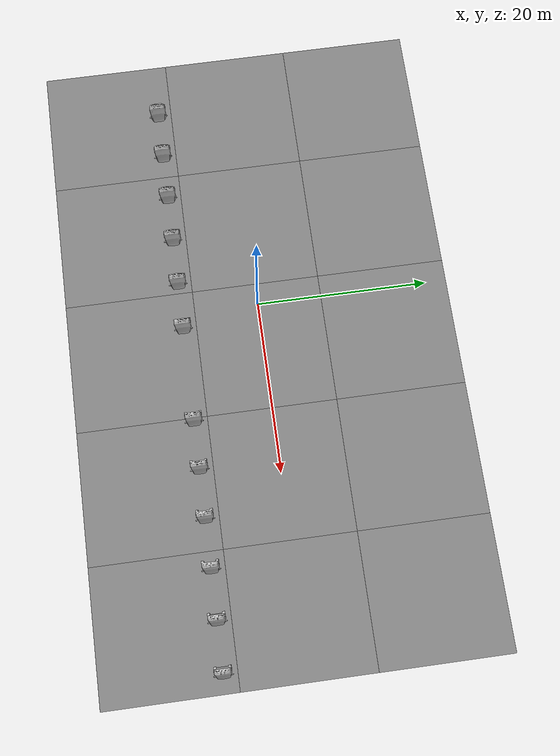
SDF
<sdf version="1.9">
 <world name="batteria_prius_3laser_harmonic">
  <physics name="4ms" type="ignored">
   <max_step_size>0.004</max_step_size>
   <real_time_factor>1.0</real_time_factor>
  </physics>
  <plugin filename="gz-sim-physics-system" name="gz::sim::systems::Physics"/>
  <plugin filename="gz-sim-scene-broadcaster-system" name="gz::sim::systems::SceneBroadcaster"/>
  <plugin filename="gz-sim-user-commands-system" name="gz::sim::systems::UserCommands"/>
  <plugin filename="gz-sim-sensors-system" name="gz::sim::systems::Sensors">
   <render_engine>ogre2</render_engine>
  </plugin>
  <light type="directional" name="sun">
   <pose>0 0 10 0 0 0</pose>
   <diffuse>0.8 0.8 0.8 1</diffuse>
   <specular>0.2 0.2 0.2 1</specular>
   <attenuation>
    <range>1000</range>
    <constant>0.9</constant>
    <linear>0.01</linear>
    <quadratic>0.001</quadratic>
   </attenuation>
   <direction>-0.5 0.1 -0.9</direction>
  </light>
  <model name="car1">
   <pose>-26.5 -9 0 0 0 -1.57</pose>
   <static>true</static>
   <link name="car1">
    <collision name="collision">
     <pose>0 0.075 0.75 0 0 0</pose>
     <geometry><box><size>2 4.9 1.5</size></box></geometry>
    </collision>
    <visual name="visual"><geometry><mesh><uri>model://opel/meshes/model.dae</uri></mesh></geometry></visual>
   </link>
  </model>
  <model name="car2">
   <pose>-21 -9 0 0 0 -1.57</pose>
   <static>true</static>
   <link name="car2">
    <collision name="collision">
     <pose>0 0.075 0.75 0 0 0</pose>
     <geometry><box><size>2 4.9 1.5</size></box></geometry>
    </collision>
    <visual name="visual"><geometry><mesh><uri>model://opel/meshes/model.dae</uri></mesh></geometry></visual>
   </link>
  </model>
  <model name="car3">
   <pose>-15.5 -9 0 0 0 -1.57</pose>
   <static>true</static>
   <link name="car3">
    <collision name="collision">
     <pose>0 0.075 0.75 0 0 0</pose>
     <geometry><box><size>2 4.9 1.5</size></box></geometry>
    </collision>
    <visual name="visual"><geometry><mesh><uri>model://opel/meshes/model.dae</uri></mesh></geometry></visual>
   </link>
  </model>
  <model name="car4">
   <pose>-10 -9 0 0 0 -1.57</pose>
   <static>true</static>
   <link name="car4">
    <collision name="collision">
     <pose>0 0.075 0.75 0 0 0</pose>
     <geometry><box><size>2 4.9 1.5</size></box></geometry>
    </collision>
    <visual name="visual"><geometry><mesh><uri>model://opel/meshes/model.dae</uri></mesh></geometry></visual>
   </link>
  </model>
  <model name="car5">
   <pose>-4.5 -9 0 0 0 -1.57</pose>
   <static>true</static>
   <link name="car5">
    <collision name="collision">
     <pose>0 0.075 0.75 0 0 0</pose>
     <geometry><box><size>2 4.9 1.5</size></box></geometry>
    </collision>
    <visual name="visual"><geometry><mesh><uri>model://opel/meshes/model.dae</uri></mesh></geometry></visual>
   </link>
  </model>
  <model name="car6">
   <pose>1 -9 0 0 0 -1.57</pose>
   <static>true</static>
   <link name="car6">
    <collision name="collision">
     <pose>0 0.075 0.75 0 0 0</pose>
     <geometry><box><size>2 4.9 1.5</size></box></geometry>
    </collision>
    <visual name="visual"><geometry><mesh><uri>model://opel/meshes/model.dae</uri></mesh></geometry></visual>
   </link>
  </model>
  <model name="car7">
   <pose>12 -9 0 0 0 -1.57</pose>
   <static>true</static>
   <link name="car7">
    <collision name="collision">
     <pose>0 0.075 0.75 0 0 0</pose>
     <geometry><box><size>2 4.9 1.5</size></box></geometry>
    </collision>
    <visual name="visual"><geometry><mesh><uri>model://opel/meshes/model.dae</uri></mesh></geometry></visual>
   </link>
  </model>
  <model name="car8">
   <pose>17.5 -9 0 0 0 -1.57</pose>
   <static>true</static>
   <link name="car8">
    <collision name="collision">
     <pose>0 0.075 0.75 0 0 0</pose>
     <geometry><box><size>2 4.9 1.5</size></box></geometry>
    </collision>
    <visual name="visual"><geometry><mesh><uri>model://opel/meshes/model.dae</uri></mesh></geometry></visual>
   </link>
  </model>
  <model name="car9">
   <pose>23 -9 0 0 0 -1.57</pose>
   <static>true</static>
   <link name="car9">
    <collision name="collision">
     <pose>0 0.075 0.75 0 0 0</pose>
     <geometry><box><size>2 4.9 1.5</size></box></geometry>
    </collision>
    <visual name="visual"><geometry><mesh><uri>model://opel/meshes/model.dae</uri></mesh></geometry></visual>
   </link>
  </model>
  <model name="car10">
   <pose>28.5 -9 0 0 0 -1.57</pose>
   <static>true</static>
   <link name="car10">
    <collision name="collision">
     <pose>0 0.075 0.75 0 0 0</pose>
     <geometry><box><size>2 4.9 1.5</size></box></geometry>
    </collision>
    <visual name="visual"><geometry><mesh><uri>model://opel/meshes/model.dae</uri></mesh></geometry></visual>
   </link>
  </model>
  <model name="car11">
   <pose>34 -9 0 0 0 -1.57</pose>
   <static>true</static>
   <link name="car11">
    <collision name="collision">
     <pose>0 0.075 0.75 0 0 0</pose>
     <geometry><box><size>2 4.9 1.5</size></box></geometry>
    </collision>
    <visual name="visual"><geometry><mesh><uri>model://opel/meshes/model.dae</uri></mesh></geometry></visual>
   </link>
  </model>
  <model name="car12">
   <pose>39.5 -9 0 0 0 -1.57</pose>
   <static>true</static>
   <link name="car12">
    <collision name="collision">
     <pose>0 0.075 0.75 0 0 0</pose>
     <geometry><box><size>2 4.9 1.5</size></box></geometry>
    </collision>
    <visual name="visual"><geometry><mesh><uri>model://opel/meshes/model.dae</uri></mesh></geometry></visual>
   </link>
  </model>
  <model name="road1">
   <static>true</static>
   <pose>5 0 0.02 0 0 0</pose>
   <link name="road_link1">
    <collision name="collision"><geometry><box><size>15 15 .1</size></box></geometry></collision>
    <visual name="visual">
     <cast_shadows>false</cast_shadows>
     <geometry><box><size>15 15 .1</size></box></geometry>
     <material>
      <ambient>0.5 0.5 0.5 1.0</ambient>
      <diffuse>0.5 0.5 0.5 1.0</diffuse>
      <specular>0.2 0.2 0.2 1.0</specular>
      <pbr>
       <metal><albedo_map>model://road_and_sidewalk/materials/textures/Road_Albedo.png</albedo_map></metal>
      </pbr>
     </material>
    </visual>
   </link>
  </model>
  <model name="road2">
   <static>true</static>
   <pose>20 0 0.02 0 0 0</pose>
   <link name="road_link2">
    <collision name="collision"><geometry><box><size>15 15 .1</size></box></geometry></collision>
    <visual name="visual">
     <cast_shadows>false</cast_shadows>
     <geometry><box><size>15 15 .1</size></box></geometry>
     <material>
      <ambient>0.5 0.5 0.5 1.0</ambient>
      <diffuse>0.5 0.5 0.5 1.0</diffuse>
      <specular>0.2 0.2 0.2 1.0</specular>
      <pbr>
       <metal><albedo_map>model://road_and_sidewalk/materials/textures/Road_Albedo.png</albedo_map></metal>
      </pbr>
     </material>
    </visual>
   </link>
  </model>
  <model name="road3">
   <static>true</static>
   <pose>-10 0 0.02 0 0 0</pose>
   <link name="road_link3">
    <collision name="collision"><geometry><box><size>15 15 .1</size></box></geometry></collision>
    <visual name="visual">
     <cast_shadows>false</cast_shadows>
     <geometry><box><size>15 15 .1</size></box></geometry>
     <material>
      <ambient>0.5 0.5 0.5 1.0</ambient>
      <diffuse>0.5 0.5 0.5 1.0</diffuse>
      <specular>0.2 0.2 0.2 1.0</specular>
      <pbr>
       <metal><albedo_map>model://road_and_sidewalk/materials/textures/Road_Albedo.png</albedo_map></metal>
      </pbr>
     </material>
    </visual>
   </link>
  </model>
  <model name="road4">
   <static>true</static>
   <pose>35 0 0.02 0 0 0</pose>
   <link name="road_link4">
    <collision name="collision"><geometry><box><size>15 15 .1</size></box></geometry></collision>
    <visual name="visual">
     <cast_shadows>false</cast_shadows>
     <geometry><box><size>15 15 .1</size></box></geometry>
     <material>
      <ambient>0.5 0.5 0.5 1.0</ambient>
      <diffuse>0.5 0.5 0.5 1.0</diffuse>
      <specular>0.2 0.2 0.2 1.0</specular>
      <pbr>
       <metal><albedo_map>model://road_and_sidewalk/materials/textures/Road_Albedo.png</albedo_map></metal>
      </pbr>
     </material>
    </visual>
   </link>
  </model>
  <model name="road5">
   <static>true</static>
   <pose>-25 0 0.02 0 0 0</pose>
   <link name="road_link5">
    <collision name="collision"><geometry><box><size>15 15 .1</size></box></geometry></collision>
    <visual name="visual">
     <cast_shadows>false</cast_shadows>
     <geometry><box><size>15 15 .1</size></box></geometry>
     <material>
      <ambient>0.5 0.5 0.5 1.0</ambient>
      <diffuse>0.5 0.5 0.5 1.0</diffuse>
      <specular>0.2 0.2 0.2 1.0</specular>
      <pbr>
       <metal><albedo_map>model://road_and_sidewalk/materials/textures/Road_Albedo.png</albedo_map></metal>
      </pbr>
     </material>
    </visual>
   </link>
  </model>
  <model name="my_sidewalk_1">
   <static>true</static>
   <pose>5 15 0.02 0 0 0</pose>
   <link name="sidewalk_link_1">
    <collision name="collision"><geometry><box><size>15 15 .1</size></box></geometry></collision>
    <visual name="visual">
     <cast_shadows>false</cast_shadows>
     <geometry><box><size>15 15 .1</size></box></geometry>
     <material>
      <ambient>0.5 0.5 0.5 1.0</ambient>
      <diffuse>0.5 0.5 0.5 1.0</diffuse>
      <specular>0.2 0.2 0.2 1.0</specular>
      <pbr><metal><albedo_map>model://road_and_sidewalk/materials/textures/sidewalk.png</albedo_map></metal></pbr>
     </material>
    </visual>
   </link>
  </model>
  <model name="my_sidewalk_1_2">
   <static>true</static>
   <pose>-25 15 0.02 0 0 0</pose>
   <link name="sidewalk_link_1_2">
    <collision name="collision"><geometry><box><size>15 15 .1</size></box></geometry></collision>
    <visual name="visual">
     <cast_shadows>false</cast_shadows>
     <geometry><box><size>15 15 .1</size></box></geometry>
     <material>
      <ambient>0.5 0.5 0.5 1.0</ambient>
      <diffuse>0.5 0.5 0.5 1.0</diffuse>
      <specular>0.2 0.2 0.2 1.0</specular>
      <pbr><metal><albedo_map>model://road_and_sidewalk/materials/textures/sidewalk.png</albedo_map></metal></pbr>
     </material>
    </visual>
   </link>
  </model>
  <model name="my_sidewalk_1_3">
   <static>true</static>
   <pose>-10 15 0.02 0 0 0</pose>
   <link name="sidewalk_link_1_3">
    <collision name="collision"><geometry><box><size>15 15 .1</size></box></geometry></collision>
    <visual name="visual">
     <cast_shadows>false</cast_shadows>
     <geometry><box><size>15 15 .1</size></box></geometry>
     <material>
      <ambient>0.5 0.5 0.5 1.0</ambient>
      <diffuse>0.5 0.5 0.5 1.0</diffuse>
      <specular>0.2 0.2 0.2 1.0</specular>
      <pbr><metal><albedo_map>model://road_and_sidewalk/materials/textures/sidewalk.png</albedo_map></metal></pbr>
     </material>
    </visual>
   </link>
  </model>
  <model name="my_sidewalk_1_4">
   <static>true</static>
   <pose>20 15 0.02 0 0 0</pose>
   <link name="sidewalk_link_1_4">
    <collision name="collision"><geometry><box><size>15 15 .1</size></box></geometry></collision>
    <visual name="visual">
     <cast_shadows>false</cast_shadows>
     <geometry><box><size>15 15 .1</size></box></geometry>
     <material>
      <ambient>0.5 0.5 0.5 1.0</ambient>
      <diffuse>0.5 0.5 0.5 1.0</diffuse>
      <specular>0.2 0.2 0.2 1.0</specular>
      <pbr><metal><albedo_map>model://road_and_sidewalk/materials/textures/sidewalk.png</albedo_map></metal></pbr>
     </material>
    </visual>
   </link>
  </model>
  <model name="my_sidewalk_1_5">
   <static>true</static>
   <pose>35 15 0.02 0 0 0</pose>
   <link name="sidewalk_link_1_5">
    <collision name="collision"><geometry><box><size>15 15 .1</size></box></geometry></collision>
    <visual name="visual">
     <cast_shadows>false</cast_shadows>
     <geometry><box><size>15 15 .1</size></box></geometry>
     <material>
      <ambient>0.5 0.5 0.5 1.0</ambient>
      <diffuse>0.5 0.5 0.5 1.0</diffuse>
      <specular>0.2 0.2 0.2 1.0</specular>
      <pbr><metal><albedo_map>model://road_and_sidewalk/materials/textures/sidewalk.png</albedo_map></metal></pbr>
     </material>
    </visual>
   </link>
  </model>
  <model name="my_sidewalk_2">
   <static>true</static>
   <pose>5 -15 0.02 0 0 0</pose>
   <link name="sidewalk_link_2">
    <collision name="collision"><geometry><box><size>15 15 .1</size></box></geometry></collision>
    <visual name="visual">
     <cast_shadows>false</cast_shadows>
     <geometry><box><size>15 15 .1</size></box></geometry>
     <material>
      <ambient>0.5 0.5 0.5 1.0</ambient>
      <diffuse>0.5 0.5 0.5 1.0</diffuse>
      <specular>0.2 0.2 0.2 1.0</specular>
      <pbr><metal><albedo_map>model://road_and_sidewalk/materials/textures/sidewalk.png</albedo_map></metal></pbr>
     </material>
    </visual>
   </link>
  </model>
  <model name="my_sidewalk_2_2">
   <static>true</static>
   <pose>-10 -15 0.02 0 0 0</pose>
   <link name="sidewalk_link_2_2">
    <collision name="collision"><geometry><box><size>15 15 .1</size></box></geometry></collision>
    <visual name="visual">
     <cast_shadows>false</cast_shadows>
     <geometry><box><size>15 15 .1</size></box></geometry>
     <material>
      <ambient>0.5 0.5 0.5 1.0</ambient>
      <diffuse>0.5 0.5 0.5 1.0</diffuse>
      <specular>0.2 0.2 0.2 1.0</specular>
      <pbr><metal><albedo_map>model://road_and_sidewalk/materials/textures/sidewalk.png</albedo_map></metal></pbr>
     </material>
    </visual>
   </link>
  </model>
  <model name="my_sidewalk_2_3">
   <static>true</static>
   <pose>20 -15 0.02 0 0 0</pose>
   <link name="sidewalk_link_2_3">
    <collision name="collision"><geometry><box><size>15 15 .1</size></box></geometry></collision>
    <visual name="visual">
     <cast_shadows>false</cast_shadows>
     <geometry><box><size>15 15 .1</size></box></geometry>
     <material>
      <ambient>0.5 0.5 0.5 1.0</ambient>
      <diffuse>0.5 0.5 0.5 1.0</diffuse>
      <specular>0.2 0.2 0.2 1.0</specular>
      <pbr><metal><albedo_map>model://road_and_sidewalk/materials/textures/sidewalk.png</albedo_map></metal></pbr>
     </material>
    </visual>
   </link>
  </model>
  <model name="my_sidewalk_2_4">
   <static>true</static>
   <pose>-25 -15 0.02 0 0 0</pose>
   <link name="sidewalk_link_2_4">
    <collision name="collision"><geometry><box><size>15 15 .1</size></box></geometry></collision>
    <visual name="visual">
     <cast_shadows>false</cast_shadows>
     <geometry><box><size>15 15 .1</size></box></geometry>
     <material>
      <ambient>0.5 0.5 0.5 1.0</ambient>
      <diffuse>0.5 0.5 0.5 1.0</diffuse>
      <specular>0.2 0.2 0.2 1.0</specular>
      <pbr><metal><albedo_map>model://road_and_sidewalk/materials/textures/sidewalk.png</albedo_map></metal></pbr>
     </material>
    </visual>
   </link>
  </model>
  <model name="my_sidewalk_2_5">
   <static>true</static>
   <pose>35 -15 0.02 0 0 0</pose>
   <link name="sidewalk_link_2_5">
    <collision name="collision"><geometry><box><size>15 15 .1</size></box></geometry></collision>
    <visual name="visual">
     <cast_shadows>false</cast_shadows>
     <geometry><box><size>15 15 .1</size></box></geometry>
     <material>
      <ambient>0.5 0.5 0.5 1.0</ambient>
      <diffuse>0.5 0.5 0.5 1.0</diffuse>
      <specular>0.2 0.2 0.2 1.0</specular>
      <pbr><metal><albedo_map>model://road_and_sidewalk/materials/textures/sidewalk.png</albedo_map></metal></pbr>
     </material>
    </visual>
   </link>
  </model>
 </world>
</sdf>
